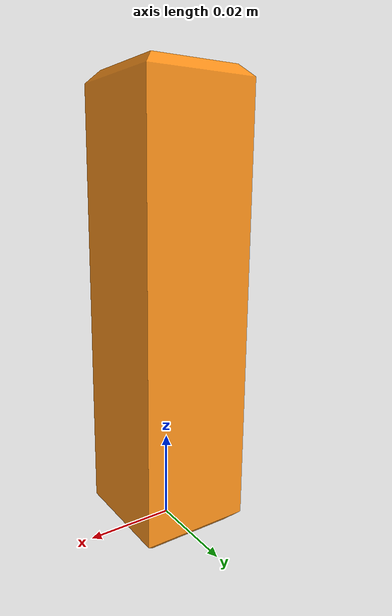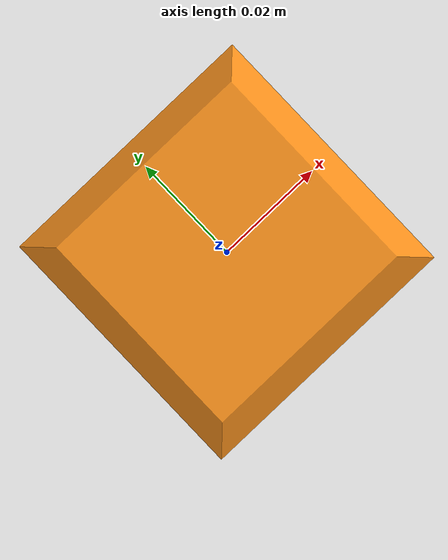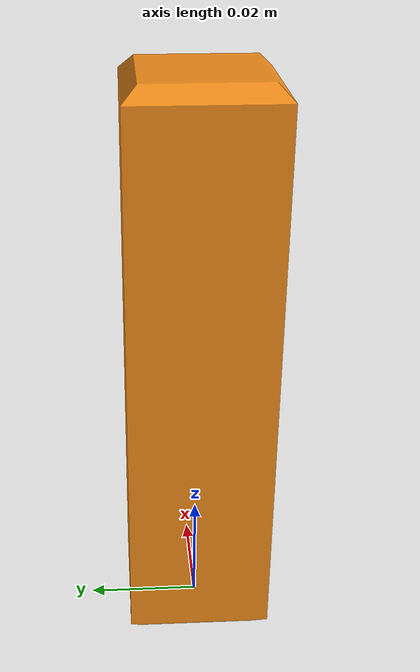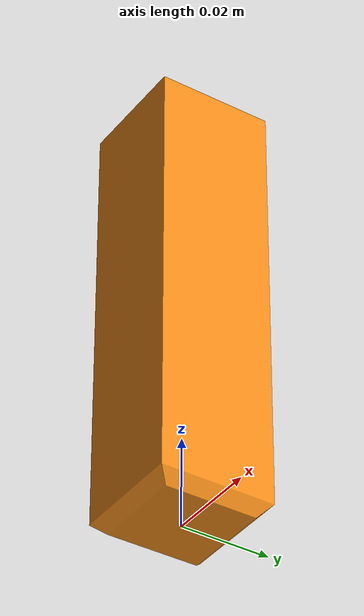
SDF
<?xml version="1.0" encoding="UTF-8"?>
<sdf version="1.6">
    <model name="taskboard_squarepeg">
          <static>1</static>
            <link name="link1">
            <pose frame="">0 0 0 0 0 0</pose>
                <velocity_decay>
                    <angular>
             		.0005
             		</angular>
                </velocity_decay>
                <collision name="collision1">
                    <pose frame="">0 0 0 0 0 0</pose>
                    <geometry>
                        <mesh>
                            <scale>0.002 0.002 0.002</scale>
                            <uri>model://taskboard-squarepeg/taskboard_square_peg-1_Rotatex_Centered_ZeroZmin.stl</uri>
                        </mesh>
                    </geometry>
                    <max_contacts>10</max_contacts>
                </collision>
                <visual name="visual1">
                    <pose frame="">0 0 0 0 0 0</pose>
                    <geometry>
                        <mesh>
                            <scale>0.002 0.002 0.002</scale>
                            <uri>model://taskboard-squarepeg/taskboard_square_peg-1_Rotatex_Centered_ZeroZmin.stl</uri>
                        </mesh>
                    </geometry>
                    <material>
                        <script>
                            <name>Gazebo/Orange</name>
                            <uri>__default__</uri>
                        </script>
                    </material>
                </visual>
                <inertial>
                    <mass>0.0385</mass>
                    <inertia>
                        <ixx>4.78233711e+00</ixx>
                        <ixy>2.06443170e-09</ixy>
                        <ixz>3.14256508e-00</ixz>
                        <iyy>4.78233728e+00</iyy>
                        <iyz>1.83990112e-08</iyz>
                        <izz>2.44284722e-01</izz>
                    </inertia>
                </inertial>
                <self_collide>0</self_collide>
               <gravity>0</gravity>
            </link>
    </model>
</sdf>
